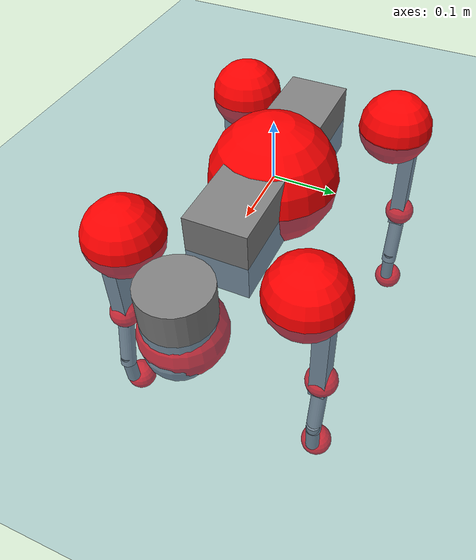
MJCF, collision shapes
<mujoco model="go2">
  <compiler angle="radian" assetdir="assets" balanceinertia="true" inertiafromgeom="false"/>

  <option timestep="0.005" density="1.2" viscosity="2e-05"/>

  <size nkey="1"/>

  <visual>
    <quality shadowsize="8192"/>
    <map shadowclip="0.5"/>
  </visual>

  <default>
    <default class="/">
      <geom contype="0" conaffinity="0" group="1" solref="-1000 -80"/>
      <site size="0.01 0.005 0.005" group="5"/>
      <general forcelimited="true" biastype="affine" gainprm="20" biasprm="0 -20 -0.5"/>
      <default class="go2">
        <joint armature="0.01" damping="0.01" frictionloss="0.2"/>
        <geom condim="1" margin="0.001"/>
        <default class="visual">
          <geom type="mesh" group="2"/>
        </default>
        <default class="collision">
          <geom group="3"/>
          <default class="foot">
            <geom size="0.022 0 0" condim="6" priority="1" friction="0.8 0.02 0.01" solimp="0.015 1 0.022"/>
          </default>
        </default>
        <default class="reward_collision_sphere">
          <geom group="5" rgba="1 0 0 1"/>
        </default>
      </default>
    </default>
  </default>

  <asset>
    <texture type="skybox" colorspace="auto" name="//unnamed_texture_0" builtin="gradient" rgb1="0.95 0.95 0.95" rgb2="0.95 0.95 0.95" width="100" height="600"/>
    <texture type="2d" colorspace="auto" name="texplane" builtin="checker" rgb1="0.345 0.575 0.748" rgb2="0.345 0.575 0.748" markrgb="1 1 1" width="512" height="512"/>
    <material name="MatPlane" class="/" texture="texplane" texuniform="true" texrepeat="2 2" specular="0.9"/>
    <material name="metal" class="/" rgba="0.9 0.95 0.95 1"/>
    <material name="black" class="/" rgba="0 0 0 1"/>
    <material name="white" class="/"/>
    <material name="gray" class="/" rgba="0.671705 0.692426 0.77427 1"/>
    <mesh name="base_0" class="/" file="base_0.obj"/>
    <mesh name="base_1" class="/" file="base_1.obj"/>
    <mesh name="base_2" class="/" file="base_2.obj"/>
    <mesh name="base_3" class="/" file="base_3.obj"/>
    <mesh name="base_4" class="/" file="base_4.obj"/>
    <mesh name="hip_0" class="/" file="hip_0.obj"/>
    <mesh name="hip_1" class="/" file="hip_1.obj"/>
    <mesh name="thigh_0" class="/" file="thigh_0.obj"/>
    <mesh name="thigh_1" class="/" file="thigh_1.obj"/>
    <mesh name="thigh_mirror_0" class="/" file="thigh_mirror_0.obj"/>
    <mesh name="thigh_mirror_1" class="/" file="thigh_mirror_1.obj"/>
    <mesh name="calf_0" class="/" file="calf_0.obj"/>
    <mesh name="calf_1" class="/" file="calf_1.obj"/>
    <mesh name="calf_mirror_0" class="/" file="calf_mirror_0.obj"/>
    <mesh name="calf_mirror_1" class="/" file="calf_mirror_1.obj"/>
    <mesh name="foot" class="/" file="foot.obj"/>
  </asset>

  <worldbody>
    <geom name="floor" class="/" size="100 100 0.125" type="plane" group="0" material="MatPlane"/>
    <light name="toplight_shadow" class="/" pos="0 0 5" dir="0.0990148 0.0990148 -0.990148" type="directional" ambient="0.04 0.04 0.04" diffuse="0.55 0.55 0.55" specular="0.12 0.12 0.12"/>
    <light name="toplight_fill" class="/" pos="0 0 5" dir="0.0990148 0.0990148 -0.990148" type="directional" castshadow="false" ambient="0.04 0.04 0.04" diffuse="0.3 0.3 0.3" specular="0.08 0.08 0.08"/>
    <body name="trunk" childclass="go2" pos="1.15054e-05 -0.000984615 -6.55737e-05" quat="1 2.8033e-06 -4.67961e-05 -8.07264e-05">
      <inertial pos="0.0244812 -0.000664644 -0.00514695" quat="-0.00977062 0.711733 -0.0101615 0.702308" mass="7.76271" diaginertia="0.132678 0.239184 0.0119226"/>
      <joint name="//unnamed_joint_0" type="free" armature="0" damping="0" frictionloss="0"/>
      <geom name="//unnamed_geom_1" class="visual" material="black" mesh="base_0"/>
      <geom name="//unnamed_geom_2" class="visual" material="black" mesh="base_1"/>
      <geom name="//unnamed_geom_3" class="visual" material="black" mesh="base_2"/>
      <geom name="//unnamed_geom_4" class="visual" material="white" mesh="base_3"/>
      <geom name="//unnamed_geom_5" class="visual" material="gray" mesh="base_4"/>
      <geom name="trunk_1" class="collision" size="0.195393 0.0485626 0.0592101" type="box"/>
      <geom name="trunk_2" class="collision" size="0.0519387 0.0467448" pos="0.299103 0 0.00866118" type="cylinder"/>
      <geom name="trunk_3" class="collision" size="0.0488223" pos="0.307499 0 -0.0519671"/>
      <geom name="//unnamed_geom_9" class="reward_collision_sphere" size="0.103877"/>
      <geom name="//unnamed_geom_10" class="reward_collision_sphere" size="0.0623264" pos="0.293856 0 -0.0389753"/>
      <site name="imu" pos="-0.0208695 0.011814 0.0316799" size="0.0103877"/>
      <camera name="track" pos="0 -2.40143 0" quat="0.707107 0.707107 0 0" mode="trackcom"/>
      <camera name="ego_camera" pos="0.327439 0 0.0389753" quat="-0.5 -0.5 0.5 0.5"/>
      <body name="FL_hip" pos="0.204544 0.0535335 -0.000876658" quat="1 -8.56018e-05 -0.000113569 -0.000140297">
        <inertial pos="-0.00656476 0.00274013 0.0021159" quat="0.497436 0.49841 0.505324 0.49879" mass="0.758877" diaginertia="0.00112664 0.00149364 0.000231272"/>
        <joint name="FL_hip_joint" pos="0 0 0" axis="0.999989 0.00479432 -4.3621e-05" range="-1.09796 1.09899" armature="0.0106637" damping="0.00675603" frictionloss="0.226519"/>
        <geom name="//unnamed_geom_11" class="visual" material="metal" mesh="hip_0"/>
        <geom name="//unnamed_geom_12" class="visual" material="gray" mesh="hip_1"/>
        <geom name="//unnamed_geom_13" class="collision" size="0.0477836 0.0207755" pos="0 0.0960573 0" quat="0.707107 0.707107 0 0" type="cylinder"/>
        <geom name="//unnamed_geom_14" class="reward_collision_sphere" size="0.0623264" pos="0 0.0840502 0"/>
        <body name="FL_thigh" pos="-0.00173506 0.112497 -0.00111242" quat="1 -0.000789219 0.000308327 0.000284475">
          <inertial pos="-0.00234796 -0.0245485 -0.0270188" quat="0.829571 0.0848215 -0.0201323 0.551554" mass="1.2922" diaginertia="0.00751079 0.0145097 0.000410974"/>
          <joint name="FL_thigh_joint" pos="0 0 0" axis="-0.00525319 0.999979 -0.00371907" stiffness="0.00269945" range="-1.517 3.47165" armature="0.0106944" damping="0.0143845" frictionloss="0.235866"/>
          <geom name="//unnamed_geom_15" class="visual" material="metal" mesh="thigh_0"/>
          <geom name="//unnamed_geom_16" class="visual" material="gray" mesh="thigh_1"/>
          <geom name="//unnamed_geom_17" class="collision" size="0.110629 0.012725 0.0176591" pos="0 0 -0.0922416" quat="0.707107 0 0.707107 0" type="box"/>
          <body name="FL_calf" pos="-0.00347376 0.000843369 -0.187063" quat="0.999999 0.00123341 8.35293e-05 0.000366177">
            <inertial pos="0.00850903 -0.000652558 -0.120368" quat="0.710772 0.00134306 -0.00441242 0.703407" mass="0.268231" diaginertia="0.00186777 0.00359311 2.63276e-05"/>
            <joint name="FL_calf_joint" pos="0 0 0" axis="-0.00084264 0.999998 -0.00191149" stiffness="0.00107629" range="-2.68906 -0.849108" armature="0.009348" damping="0.00895567" frictionloss="0.20326"/>
            <geom name="//unnamed_geom_18" class="visual" material="gray" mesh="calf_0"/>
            <geom name="//unnamed_geom_19" class="visual" material="black" mesh="calf_1"/>
            <geom name="FL_calf0" class="collision" size="0.0124653 0.0623264" pos="0.00839588 0 -0.0519671" quat="0.994493 0 -0.104807 0" type="cylinder"/>
            <geom name="//unnamed_geom_21" class="collision" size="0.0114265 0.0337601" pos="0.0209897 0 -0.128186" quat="0.999688 0 0.0249974 0" type="cylinder"/>
            <geom name="//unnamed_geom_22" class="visual" pos="0 0 -0.184483" quat="1 0 0 0" material="black" mesh="foot"/>
            <geom name="FL_foot" class="foot" size="0.0174763" pos="-0.00209897 0 -0.184483"/>
            <geom name="//unnamed_geom_24" class="reward_collision_sphere" size="0.0259693"/>
            <geom name="//unnamed_geom_25" class="reward_collision_sphere" size="0.0259693" pos="-0.00209897 0 -0.184483"/>
            <site name="FL_foot" class="foot" pos="-0.00209897 0 -0.184483" size="0.0103877"/>
          </body>
        </body>
      </body>
      <body name="FR_hip" pos="0.205443 -0.0583531 -0.00169088" quat="1 0.000381331 0.000442982 0.000561106">
        <inertial pos="-0.00795193 -0.000930506 0.00199629" quat="0.500466 0.504392 0.49978 0.495319" mass="0.759012" diaginertia="0.00108768 0.00153079 0.000235647"/>
        <joint name="FR_hip_joint" pos="0 0 0" axis="0.999955 -0.00571489 0.00760029" range="-1.0493 1.06386" armature="0.0116247" damping="0.0157557" frictionloss="0.235712"/>
        <geom name="//unnamed_geom_26" class="visual" pos="0 2.91488e-09 1.25025e-07" quat="4.63268e-05 1 0 0" material="metal" mesh="hip_0"/>
        <geom name="//unnamed_geom_27" class="visual" pos="0 4.72538e-09 -3.09236e-07" quat="4.63268e-05 1 0 0" material="gray" mesh="hip_1"/>
        <geom name="//unnamed_geom_28" class="collision" size="0.0477836 0.0207755" pos="0 -0.0960573 0" quat="0.707107 0.707107 0 0" type="cylinder"/>
        <geom name="//unnamed_geom_29" class="reward_collision_sphere" size="0.0623264" pos="0 -0.0840502 0"/>
        <body name="FR_thigh" pos="-0.00117487 -0.116948 -0.00204725" quat="0.999999 0.000230153 -0.00122018 -0.000596336">
          <inertial pos="-0.00639888 0.0287549 -0.0277341" quat="0.547985 -0.0187556 0.094974 0.830867" mass="1.32309" diaginertia="0.00759248 0.0146258 0.000416"/>
          <joint name="FR_thigh_joint" pos="0 0 0" axis="0.00133037 -0.999999 0.000578808" range="-3.46704 1.57035" armature="0.0104893" damping="0.0243014" frictionloss="0.209824"/>
          <geom name="//unnamed_geom_30" class="visual" material="metal" mesh="thigh_mirror_0"/>
          <geom name="//unnamed_geom_31" class="visual" material="gray" mesh="thigh_mirror_1"/>
          <geom name="//unnamed_geom_32" class="collision" size="0.110629 0.012725 0.0176591" pos="0 0 -0.0922416" quat="0.707107 0 0.707107 0" type="box"/>
          <body name="FR_calf" pos="0.000672059 -0.00089389 -0.18595" quat="1 6.24675e-06 -5.53355e-07 -1.31328e-05">
            <inertial pos="0.00943224 0.000762577 -0.120944" quat="0.70595 -0.0103226 -0.00667833 0.708155" mass="0.26944" diaginertia="0.00193788 0.00366119 2.66633e-05"/>
            <joint name="FR_calf_joint" pos="0 0 0" axis="-0.00279369 -0.999962 0.00819738" range="0.859218 2.70049" armature="0.00993491" damping="0.00326574" frictionloss="0.206045"/>
            <geom name="//unnamed_geom_33" class="visual" material="gray" mesh="calf_mirror_0"/>
            <geom name="//unnamed_geom_34" class="visual" material="black" mesh="calf_mirror_1"/>
            <geom name="FR_calf0" class="collision" size="0.0135041 0.0623264" pos="0.0104948 0 -0.0519671" quat="0.995004 0 -0.0998334 0" type="cylinder"/>
            <geom name="//unnamed_geom_36" class="collision" size="0.0114265 0.0337601" pos="0.0209897 0 -0.128186" quat="0.999688 0 0.0249974 0" type="cylinder"/>
            <geom name="//unnamed_geom_37" class="visual" pos="0 0 -0.184483" quat="1 0 0 0" material="black" mesh="foot"/>
            <geom name="FR_foot" class="foot" size="0.0203597" pos="-0.00209897 0 -0.184483"/>
            <geom name="//unnamed_geom_39" class="reward_collision_sphere" size="0.0259693"/>
            <geom name="//unnamed_geom_40" class="reward_collision_sphere" size="0.0259693" pos="-0.00209897 0 -0.184483"/>
            <site name="FR_foot" class="foot" pos="-0.00209897 0 -0.184483" size="0.0103877"/>
          </body>
        </body>
      </body>
      <body name="RL_hip" pos="-0.202917 0.0548826 0.0017698" quat="0.999999 0.00115046 0.000234058 -0.000208209">
        <inertial pos="0.00591 0.00188051 0.00225473" quat="0.502739 0.502851 0.488314 0.505909" mass="0.810022" diaginertia="0.00116927 0.00153568 0.000242714"/>
        <joint name="RL_hip_joint" pos="0 0 0" axis="-0.999777 -0.00564694 -0.0203374" range="-1.00792 0.990241" armature="0.010718" damping="0.00563721" frictionloss="0.224693"/>
        <geom name="//unnamed_geom_41" class="visual" pos="-1.59741e-09 0 -3.13129e-07" quat="4.63268e-05 0 1 0" material="metal" mesh="hip_0"/>
        <geom name="//unnamed_geom_42" class="visual" pos="-2.58959e-09 0 -2.77701e-07" quat="4.63268e-05 0 1 0" material="gray" mesh="hip_1"/>
        <geom name="//unnamed_geom_43" class="collision" size="0.0477836 0.0207755" pos="0 0.0960573 0" quat="0.707107 0.707107 0 0" type="cylinder"/>
        <geom name="//unnamed_geom_44" class="reward_collision_sphere" size="0.0623264" pos="0 0.0840502 0"/>
        <body name="RL_thigh" pos="-0.0016871 0.114076 0.00158229" quat="1 0.000362623 0.000104052 0.000848904">
          <inertial pos="-0.00332557 -0.026579 -0.0273183" quat="0.831319 0.094273 -0.0244766 0.547195" mass="1.29622" diaginertia="0.00760949 0.015587 0.000443115"/>
          <joint name="RL_thigh_joint" pos="0 0 0" axis="0.0174963 0.999845 0.00178558" range="-0.543818 4.58145" armature="0.00910516" damping="0.00432057" frictionloss="0.208319"/>
          <geom name="//unnamed_geom_45" class="visual" material="metal" mesh="thigh_0"/>
          <geom name="//unnamed_geom_46" class="visual" material="gray" mesh="thigh_1"/>
          <geom name="//unnamed_geom_47" class="collision" size="0.110629 0.012725 0.0176591" pos="0 0 -0.0922416" quat="0.707107 0 0.707107 0" type="box"/>
          <body name="RL_calf" pos="-0.000762724 0.00203217 -0.182967" quat="1 0.000600456 0.000308819 -0.000638824">
            <inertial pos="0.00666676 -0.000899191 -0.12323" quat="0.712209 0.000332651 -0.00201212 0.701965" mass="0.285414" diaginertia="0.00194853 0.00378506 2.67564e-05"/>
            <joint name="RL_calf_joint" pos="0 0 0" axis="-0.000407609 0.99998 -0.00635229" range="-2.75918 -0.859252" armature="0.00981703" damping="0" frictionloss="0.216298"/>
            <geom name="//unnamed_geom_48" class="visual" material="gray" mesh="calf_0"/>
            <geom name="//unnamed_geom_49" class="visual" material="black" mesh="calf_1"/>
            <geom name="RL_calf0" class="collision" size="0.0135041 0.0623264" pos="0.0104948 0 -0.0519671" quat="0.995004 0 -0.0998334 0" type="cylinder"/>
            <geom name="//unnamed_geom_51" class="collision" size="0.0114265 0.0337601" pos="0.0209897 0 -0.128186" quat="0.999688 0 0.0249974 0" type="cylinder"/>
            <geom name="//unnamed_geom_52" class="visual" pos="0 0 -0.184483" quat="1 0 0 0" material="black" mesh="foot"/>
            <geom name="RL_foot" class="foot" size="0.0228319" pos="-0.00209897 0 -0.184483"/>
            <geom name="//unnamed_geom_54" class="reward_collision_sphere" size="0.0259693"/>
            <geom name="//unnamed_geom_55" class="reward_collision_sphere" size="0.0259693" pos="-0.00209897 0 -0.184483"/>
            <site name="RL_foot" class="foot" pos="-0.00209897 0 -0.184483" size="0.0103877"/>
          </body>
        </body>
      </body>
      <body name="RR_hip" pos="-0.201395 -0.0556997 -0.000955093" quat="1 1.53806e-06 -3.22493e-07 -1.6611e-06">
        <inertial pos="0.00760302 -0.00199322 -0.00213898" quat="0.490048 0.499007 0.501691 0.509069" mass="0.774169" diaginertia="0.0011753 0.00158285 0.000238415"/>
        <joint name="RR_hip_joint" pos="0 0 0" axis="-0.999993 0.0035942 -0.000936208" stiffness="0.0122365" range="-1.05782 1.06053" armature="0.0105299" damping="0.00511073" frictionloss="0.209932"/>
        <geom name="//unnamed_geom_56" class="visual" pos="1.60265e-09 2.91488e-09 -4.38155e-07" quat="2.14617e-09 4.63268e-05 4.63268e-05 -1" material="metal" mesh="hip_0"/>
        <geom name="//unnamed_geom_57" class="visual" pos="2.57664e-09 4.72537e-09 3.15345e-08" quat="2.14617e-09 4.63268e-05 4.63268e-05 -1" material="gray" mesh="hip_1"/>
        <geom name="//unnamed_geom_58" class="collision" size="0.0477836 0.0207755" pos="0 -0.0960573 0" quat="0.707107 0.707107 0 0" type="cylinder"/>
        <geom name="//unnamed_geom_59" class="reward_collision_sphere" size="0.0623264" pos="0 -0.0840502 0"/>
        <body name="RR_thigh" pos="-0.000324451 -0.11348 0.000912321" quat="1 8.29666e-07 -2.03913e-08 9.33865e-08">
          <inertial pos="-0.00412984 0.0273445 -0.0262036" quat="0.556558 -0.013129 0.0866138 0.826177" mass="1.24317" diaginertia="0.00735015 0.0140078 0.000417164"/>
          <joint name="RR_thigh_joint" pos="0 0 0" axis="-0.0038182 -0.999933 0.0109635" range="-4.51755 0.572705" armature="0.0107781" damping="0.00787827" frictionloss="0.22239"/>
          <geom name="//unnamed_geom_60" class="visual" material="metal" mesh="thigh_mirror_0"/>
          <geom name="//unnamed_geom_61" class="visual" material="gray" mesh="thigh_mirror_1"/>
          <geom name="//unnamed_geom_62" class="collision" size="0.110629 0.012725 0.0176591" pos="0 0 -0.0922416" quat="0.707107 0 0.707107 0" type="box"/>
          <body name="RR_calf" pos="0.00339604 0.0019047 -0.182442" quat="0.999999 -6.59605e-05 -0.000132695 0.00126793">
            <inertial pos="0.00394248 0.000618115 -0.124774" quat="0.709364 -0.0151528 0.00278235 0.704674" mass="0.269792" diaginertia="0.0018648 0.00350776 2.62109e-05"/>
            <joint name="RR_calf_joint" pos="0 0 0" axis="0.00188518 -0.999942 -0.0106227" range="0.824476 2.70693" armature="0.010667" damping="0.00865043" frictionloss="0.201652"/>
            <geom name="//unnamed_geom_63" class="visual" material="gray" mesh="calf_mirror_0"/>
            <geom name="//unnamed_geom_64" class="visual" material="black" mesh="calf_mirror_1"/>
            <geom name="RR_calf0" class="collision" size="0.0135041 0.0623264" pos="0.0104948 0 -0.0519671" quat="0.995004 0 -0.0998334 0" type="cylinder"/>
            <geom name="//unnamed_geom_66" class="collision" size="0.0114265 0.0337601" pos="0.0209897 0 -0.128186" quat="0.999688 0 0.0249974 0" type="cylinder"/>
            <geom name="//unnamed_geom_67" class="visual" pos="0 0 -0.184483" quat="1 0 0 0" material="black" mesh="foot"/>
            <geom name="RR_foot" class="foot" size="0.0212778" pos="-0.00209897 0 -0.184483"/>
            <geom name="//unnamed_geom_69" class="reward_collision_sphere" size="0.0259693"/>
            <geom name="//unnamed_geom_70" class="reward_collision_sphere" size="0.0259693" pos="-0.00209897 0 -0.184483"/>
            <site name="RR_foot" class="foot" pos="-0.00209897 0 -0.184483" size="0.0103877"/>
          </body>
        </body>
      </body>
    </body>
  </worldbody>

  <contact>
    <pair class="/" geom1="floor" geom2="FL_foot" name="//unnamed_contact_0"/>
    <pair class="/" geom1="floor" geom2="FR_foot" name="//unnamed_contact_1"/>
    <pair class="/" geom1="floor" geom2="RL_foot" name="//unnamed_contact_2"/>
    <pair class="/" geom1="floor" geom2="RR_foot" name="//unnamed_contact_3"/>
  </contact>

  <actuator>
    <general name="FL_hip" class="/" joint="FL_hip_joint" forcerange="-22.4827 22.4827" gainprm="20.3103" biasprm="0 -20.3103 -0.555739"/>
    <general name="FL_thigh" class="/" joint="FL_thigh_joint" forcerange="-22.89 22.89" gainprm="20.3103" biasprm="0 -20.3103 -0.555739"/>
    <general name="FL_calf" class="/" joint="FL_calf_joint" forcerange="-42.5859 42.5859" gainprm="20.3103" biasprm="0 -20.3103 -0.555739"/>
    <general name="FR_hip" class="/" joint="FR_hip_joint" forcerange="-23.6548 23.6548" gainprm="20.3103" biasprm="0 -20.3103 -0.555739"/>
    <general name="FR_thigh" class="/" joint="FR_thigh_joint" forcerange="-23.6224 23.6224" gainprm="20.3103" biasprm="0 -20.3103 -0.555739"/>
    <general name="FR_calf" class="/" joint="FR_calf_joint" forcerange="-50.0402 50.0402" gainprm="20.3103" biasprm="0 -20.3103 -0.555739"/>
    <general name="RL_hip" class="/" joint="RL_hip_joint" forcerange="-22.7111 22.7111" gainprm="20.3103" biasprm="0 -20.3103 -0.555739"/>
    <general name="RL_thigh" class="/" joint="RL_thigh_joint" forcerange="-25.5093 25.5093" gainprm="20.3103" biasprm="0 -20.3103 -0.555739"/>
    <general name="RL_calf" class="/" joint="RL_calf_joint" forcerange="-42.9797 42.9797" gainprm="20.3103" biasprm="0 -20.3103 -0.555739"/>
    <general name="RR_hip" class="/" joint="RR_hip_joint" forcerange="-26.1579 26.1579" gainprm="20.3103" biasprm="0 -20.3103 -0.555739"/>
    <general name="RR_thigh" class="/" joint="RR_thigh_joint" forcerange="-23.9714 23.9714" gainprm="20.3103" biasprm="0 -20.3103 -0.555739"/>
    <general name="RR_calf" class="/" joint="RR_calf_joint" forcerange="-47.1287 47.1287" gainprm="20.3103" biasprm="0 -20.3103 -0.555739"/>
  </actuator>

  <sensor>
    <gyro site="imu" name="imu_angular_velocity"/>
    <velocimeter site="imu" name="imu_linear_velocity"/>
    <framelinvel objtype="site" objname="FL_foot" name="FL_foot_global_linear_velocity"/>
    <framelinvel objtype="site" objname="FR_foot" name="FR_foot_global_linear_velocity"/>
    <framelinvel objtype="site" objname="RL_foot" name="RL_foot_global_linear_velocity"/>
    <framelinvel objtype="site" objname="RR_foot" name="RR_foot_global_linear_velocity"/>
  </sensor>

  <keyframe>
    <key name="home" qpos="0 0 0.325 1 0 0 0 0.1 0.8 -1.5 -0.1 -0.8 1.5 -0.1 0.8 -1.5 0.1 -0.8 1.5"/>
  </keyframe>
</mujoco>
